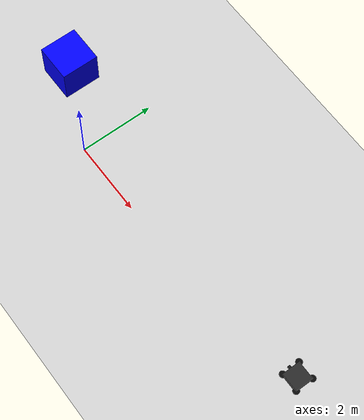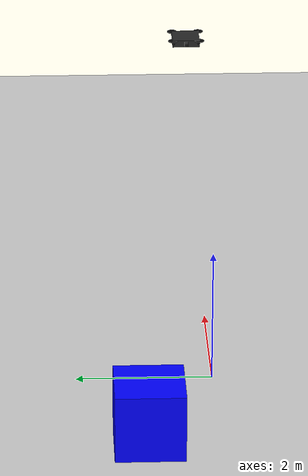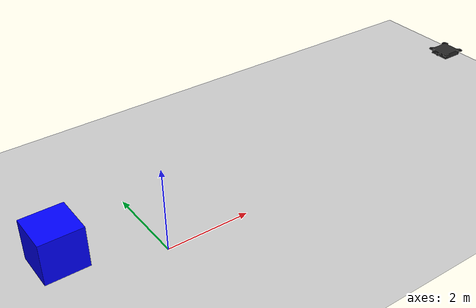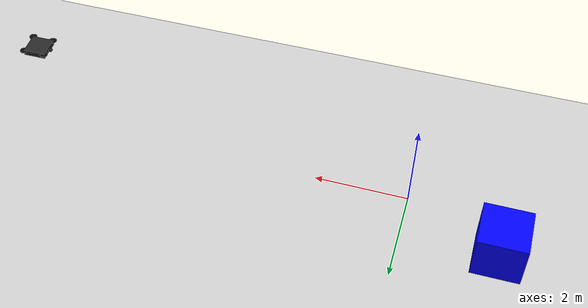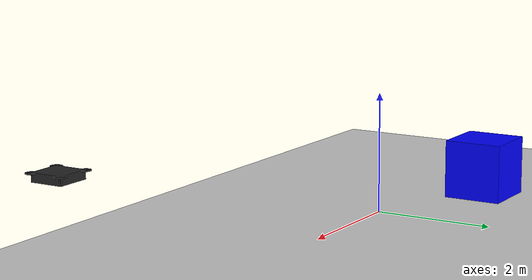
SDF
<sdf version="1.9">
 <world name="raptor_mvp_iris_actor">
  <plugin filename="gz-sim-physics-system" name="gz::sim::systems::Physics"/>
  <plugin filename="gz-sim-user-commands-system" name="gz::sim::systems::UserCommands"/>
  <plugin filename="gz-sim-sensors-system" name="gz::sim::systems::Sensors">
   <render_engine>ogre2</render_engine>
  </plugin>
  <physics name="1ms" type="ignored">
   <max_step_size>0.001</max_step_size>
   <real_time_factor>1.0</real_time_factor>
  </physics>
  <scene><ambient>1.0 1.0 1.0</ambient><background>0.8 0.8 0.8</background><grid>false</grid></scene>
  <light type="directional" name="sun">
   <pose>0 0 10 0 0 0</pose>
   <diffuse>0.8 0.8 0.8 1</diffuse>
   <specular>0.8 0.8 0.8 1</specular>
   <attenuation>
    <range>1000</range>
    <constant>0.9</constant>
    <linear>0.01</linear>
    <quadratic>0.001</quadratic>
   </attenuation>
   <direction>-0.5 0.1 -0.9</direction>
  </light>
  <model name="ground_plane">
   <static>true</static>
   <link name="link">
    <collision name="collision">
     <geometry><plane><normal>0 0 1</normal><size>100 100</size></plane></geometry>
    </collision>
    <visual name="visual">
     <geometry><plane><normal>0 0 1</normal><size>100 100</size></plane></geometry>
     <material><ambient>0.8 0.8 0.8 1</ambient><diffuse>0.8 0.8 0.8 1</diffuse></material>
    </visual>
   </link>
  </model>
  <model name="distractor_box">
   <static>true</static>
   <pose>-2 1 0.5 0 0 0</pose>
   <link name="link">
    <collision name="collision"><geometry><box><size>1 1 1</size></box></geometry></collision>
    <visual name="visual">
     <geometry><box><size>1 1 1</size></box></geometry>
     <material><ambient>0 0 1 1</ambient><diffuse>0 0 1 1</diffuse></material>
    </visual>
   </link>
  </model>
  <model name="iris_uav">
   <static>true</static>
   <pose>8 0 2.2 0 0 3.14159</pose>
   <link name="base_link">
    <inertial>
     <mass>1.5</mass>
     <inertia><ixx>0.02</ixx><iyy>0.02</iyy><izz>0.03</izz><ixy>0</ixy><ixz>0</ixz><iyz>0</iyz></inertia>
    </inertial>
    <collision name="body_collision"><geometry><box><size>0.45 0.45 0.12</size></box></geometry></collision>
    <visual name="body_visual">
     <geometry><box><size>0.45 0.45 0.12</size></box></geometry>
     <material><ambient>0.15 0.15 0.15 1</ambient><diffuse>0.15 0.15 0.15 1</diffuse></material>
    </visual>
    <visual name="arm_x_visual">
     <pose>0 0 0 0 0 0.785398</pose>
     <geometry><box><size>0.62 0.04 0.03</size></box></geometry>
     <material><ambient>0.25 0.25 0.25 1</ambient><diffuse>0.25 0.25 0.25 1</diffuse></material>
    </visual>
    <visual name="arm_y_visual">
     <pose>0 0 0 0 0 -0.785398</pose>
     <geometry><box><size>0.62 0.04 0.03</size></box></geometry>
     <material><ambient>0.25 0.25 0.25 1</ambient><diffuse>0.25 0.25 0.25 1</diffuse></material>
    </visual>
    <visual name="rotor_fl_visual">
     <pose>0.22 0.22 0.05 0 0 0</pose>
     <geometry><cylinder><radius>0.08</radius><length>0.01</length></cylinder></geometry>
     <material><ambient>0.03 0.03 0.03 1</ambient><diffuse>0.03 0.03 0.03 1</diffuse></material>
    </visual>
    <visual name="rotor_fr_visual">
     <pose>0.22 -0.22 0.05 0 0 0</pose>
     <geometry><cylinder><radius>0.08</radius><length>0.01</length></cylinder></geometry>
     <material><ambient>0.03 0.03 0.03 1</ambient><diffuse>0.03 0.03 0.03 1</diffuse></material>
    </visual>
    <visual name="rotor_rl_visual">
     <pose>-0.22 0.22 0.05 0 0 0</pose>
     <geometry><cylinder><radius>0.08</radius><length>0.01</length></cylinder></geometry>
     <material><ambient>0.03 0.03 0.03 1</ambient><diffuse>0.03 0.03 0.03 1</diffuse></material>
    </visual>
    <visual name="rotor_rr_visual">
     <pose>-0.22 -0.22 0.05 0 0 0</pose>
     <geometry><cylinder><radius>0.08</radius><length>0.01</length></cylinder></geometry>
     <material><ambient>0.03 0.03 0.03 1</ambient><diffuse>0.03 0.03 0.03 1</diffuse></material>
    </visual>
   </link>
   <link name="camera_link">
    <pose>0.24 0 0 0 0 0</pose>
    <inertial>
     <mass>0.12</mass>
     <inertia><ixx>0.0004</ixx><iyy>0.0004</iyy><izz>0.0004</izz><ixy>0</ixy><ixz>0</ixz><iyz>0</iyz></inertia>
    </inertial>
    <visual name="camera_body_visual">
     <geometry><box><size>0.10 0.06 0.06</size></box></geometry>
     <material><ambient>0.08 0.08 0.08 1</ambient><diffuse>0.08 0.08 0.08 1</diffuse></material>
    </visual>
    <sensor name="front_camera" type="camera">
     <always_on>1</always_on>
     <update_rate>20</update_rate>
     <visualize>false</visualize>
     <topic>/raptor/iris/camera</topic>
     <camera>
      <horizontal_fov>1.047</horizontal_fov>
      <image><width>640</width><height>480</height></image>
      <clip><near>0.1</near><far>120</far></clip>
     </camera>
    </sensor>
   </link>
   <joint name="camera_joint" type="fixed"><parent>base_link</parent><child>camera_link</child></joint>
  </model>
 </world>
</sdf>
